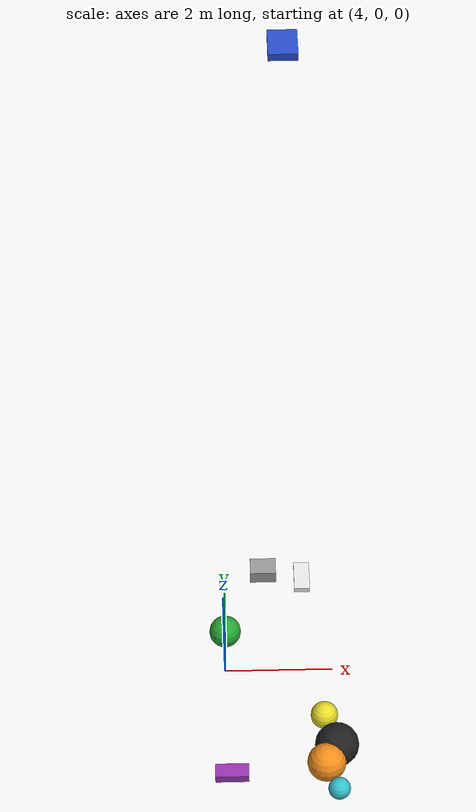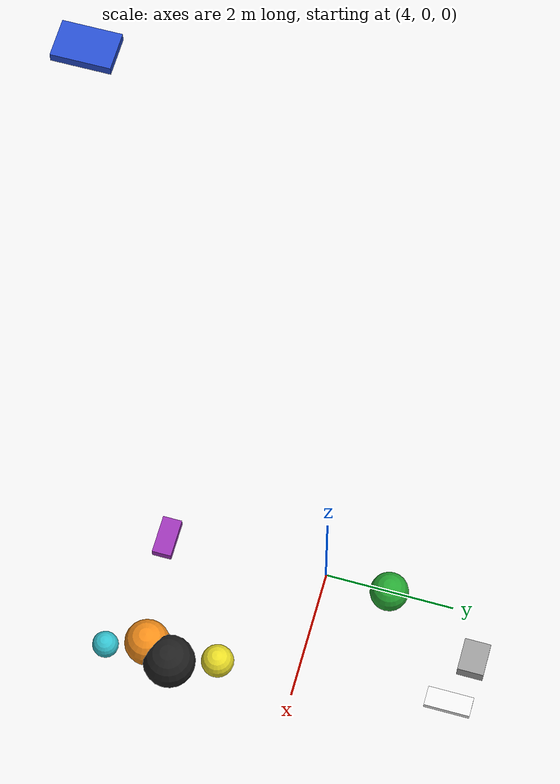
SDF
<sdf version="1.5">
 <world name="default">
  <include><uri>model://sun</uri></include>
  <spherical_coordinates>
   <surface_model>EARTH_WGS84</surface_model>
   <latitude_deg>47.333439</latitude_deg>
   <longitude_deg>8.547097</longitude_deg>
   <elevation>1.7</elevation>
  </spherical_coordinates>
  <physics name="default_physics" default="0" type="ode">
   <gravity>0 0 -9.8066</gravity>
   <ode>
    <solver>
     <type>quick</type>
     <iters>10</iters>
     <sor>1.3</sor>
     <use_dynamic_moi_rescaling>0</use_dynamic_moi_rescaling>
    </solver>
    <constraints>
     <cfm>0</cfm>
     <erp>0.2</erp>
     <contact_max_correcting_vel>100</contact_max_correcting_vel>
     <contact_surface_layer>0.001</contact_surface_layer>
    </constraints>
   </ode>
   <max_step_size>0.004</max_step_size>
   <real_time_factor>1</real_time_factor>
   <real_time_update_rate>250</real_time_update_rate>
   <magnetic_field>6.0e-6 2.3e-5 -4.2e-5</magnetic_field>
  </physics>
  <model name="trash_sphere_1">
   <pose>4 1 0 0 0 0</pose>
   <link name="link">
    <collision name="collision"><geometry><sphere><radius>0.3</radius></sphere></geometry></collision>
    <visual name="visual">
     <geometry><sphere><radius>0.3</radius></sphere></geometry>
     <material>
      <script><uri>file://media/materials/scripts/gazebo.material</uri><name>Gazebo/Green</name></script>
     </material>
    </visual>
    <inertial>
     <mass>0.0113</mass>
     <inertia><ixx>0.0001</ixx><ixy>0</ixy><ixz>0</ixz><iyy>0.0001</iyy><iyz>0</iyz><izz>0.0001</izz></inertia>
    </inertial>
   </link>
   <static>false</static>
   <plugin name="trash_buoyancy_trash_sphere_1" filename="libTrashBuoyancyPlugin.so">
    <bodyName>link</bodyName>
    <waterLevel>0</waterLevel>
    <waterDensity>997.8</waterDensity>
    <shape>sphere</shape>
    <radius>0.3</radius>
   </plugin>
  </model>
  <model name="trash_box_2">
   <pose>5.0 -2.30 15 0 0 0</pose>
   <link name="link">
    <collision name="collision"><geometry><box><size>0.4 0.6 0.1</size></box></geometry></collision>
    <visual name="visual">
     <geometry><box><size>0.4 0.6 0.1</size></box></geometry>
     <material>
      <script><uri>file://media/materials/scripts/gazebo.material</uri><name>Gazebo/Blue</name></script>
     </material>
    </visual>
    <inertial>
     <mass>0.0024</mass>
     <inertia><ixx>0.0001</ixx><ixy>0</ixy><ixz>0</ixz><iyy>0.0001</iyy><iyz>0</iyz><izz>0.0001</izz></inertia>
    </inertial>
   </link>
   <static>false</static>
   <plugin name="trash_buoyancy_trash_box_2" filename="libTrashBuoyancyPlugin.so">
    <bodyName>link</bodyName>
    <waterLevel>0</waterLevel>
    <waterDensity>997.8</waterDensity>
    <shape>box</shape>
    <size>0.4 0.6 0.1</size>
   </plugin>
  </model>
  <model name="trash_sphere_2">
   <pose>5.80 -1.2 0.1 0 0 0</pose>
   <link name="link">
    <collision name="collision"><geometry><sphere><radius>0.25</radius></sphere></geometry></collision>
    <visual name="visual">
     <geometry><sphere><radius>0.25</radius></sphere></geometry>
     <material>
      <script><uri>file://media/materials/scripts/gazebo.material</uri><name>Gazebo/Yellow</name></script>
     </material>
    </visual>
    <inertial>
     <mass>0.0065</mass>
     <inertia><ixx>0.0001</ixx><ixy>0</ixy><ixz>0</ixz><iyy>0.0001</iyy><iyz>0</iyz><izz>0.0001</izz></inertia>
    </inertial>
   </link>
   <static>false</static>
   <plugin name="trash_buoyancy_trash_sphere_2" filename="libTrashBuoyancyPlugin.so">
    <bodyName>link</bodyName>
    <waterLevel>0</waterLevel>
    <waterDensity>997.8</waterDensity>
    <shape>sphere</shape>
    <radius>0.25</radius>
   </plugin>
  </model>
  <model name="trash_box_3">
   <pose>4.1 -2.5 0.1 0 0 0</pose>
   <link name="link">
    <collision name="collision"><geometry><box><size>0.6 0.3 0.15</size></box></geometry></collision>
    <visual name="visual">
     <geometry><box><size>0.6 0.3 0.15</size></box></geometry>
     <material>
      <script><uri>file://media/materials/scripts/gazebo.material</uri><name>Gazebo/Purple</name></script>
     </material>
    </visual>
    <inertial>
     <mass>0.0027</mass>
     <inertia><ixx>0.0001</ixx><ixy>0</ixy><ixz>0</ixz><iyy>0.0001</iyy><iyz>0</iyz><izz>0.0001</izz></inertia>
    </inertial>
   </link>
   <static>false</static>
   <plugin name="trash_buoyancy_trash_box_3" filename="libTrashBuoyancyPlugin.so">
    <bodyName>link</bodyName>
    <waterLevel>0</waterLevel>
    <waterDensity>997.8</waterDensity>
    <shape>box</shape>
    <size>0.6 0.3 0.15</size>
   </plugin>
  </model>
  <model name="trash_sphere_3">
   <pose>5.8 -2.3 0.1 0 0 0</pose>
   <link name="link">
    <collision name="collision"><geometry><sphere><radius>0.35</radius></sphere></geometry></collision>
    <visual name="visual">
     <geometry><sphere><radius>0.35</radius></sphere></geometry>
     <material>
      <script><uri>file://media/materials/scripts/gazebo.material</uri><name>Gazebo/Orange</name></script>
     </material>
    </visual>
    <inertial>
     <mass>0.0179</mass>
     <inertia><ixx>0.0001</ixx><ixy>0</ixy><ixz>0</ixz><iyy>0.0001</iyy><iyz>0</iyz><izz>0.0001</izz></inertia>
    </inertial>
   </link>
   <static>false</static>
   <plugin name="trash_buoyancy_trash_sphere_3" filename="libTrashBuoyancyPlugin.so">
    <bodyName>link</bodyName>
    <waterLevel>0</waterLevel>
    <waterDensity>997.8</waterDensity>
    <shape>sphere</shape>
    <radius>0.35</radius>
   </plugin>
  </model>
  <model name="trash_box_4">
   <pose>5.5 2.3 0.1 0 0 0</pose>
   <link name="link">
    <collision name="collision"><geometry><box><size>0.3 0.7 0.1</size></box></geometry></collision>
    <visual name="visual">
     <geometry><box><size>0.3 0.7 0.1</size></box></geometry>
     <material>
      <script><uri>file://media/materials/scripts/gazebo.material</uri><name>Gazebo/White</name></script>
     </material>
    </visual>
    <inertial>
     <mass>0.0021</mass>
     <inertia><ixx>0.0001</ixx><ixy>0</ixy><ixz>0</ixz><iyy>0.0001</iyy><iyz>0</iyz><izz>0.0001</izz></inertia>
    </inertial>
   </link>
   <static>false</static>
   <plugin name="trash_buoyancy_trash_box_4" filename="libTrashBuoyancyPlugin.so">
    <bodyName>link</bodyName>
    <waterLevel>0</waterLevel>
    <waterDensity>997.8</waterDensity>
    <shape>box</shape>
    <size>0.3 0.7 0.1</size>
   </plugin>
  </model>
  <model name="trash_sphere_4">
   <pose>6 -2.9 0.1 0 0 0</pose>
   <link name="link">
    <collision name="collision"><geometry><sphere><radius>0.2</radius></sphere></geometry></collision>
    <visual name="visual">
     <geometry><sphere><radius>0.2</radius></sphere></geometry>
     <material>
      <script><uri>file://media/materials/scripts/gazebo.material</uri><name>Gazebo/Cyan</name></script>
     </material>
    </visual>
    <inertial>
     <mass>0.0033</mass>
     <inertia><ixx>0.0001</ixx><ixy>0</ixy><ixz>0</ixz><iyy>0.0001</iyy><iyz>0</iyz><izz>0.0001</izz></inertia>
    </inertial>
   </link>
   <static>false</static>
   <plugin name="trash_buoyancy_trash_sphere_4" filename="libTrashBuoyancyPlugin.so">
    <bodyName>link</bodyName>
    <waterLevel>0</waterLevel>
    <waterDensity>997.8</waterDensity>
    <shape>sphere</shape>
    <radius>0.2</radius>
   </plugin>
  </model>
  <model name="trash_box_5">
   <pose>4.75 2.5 0.1 0 0 0</pose>
   <link name="link">
    <collision name="collision"><geometry><box><size>0.5 0.4 0.25</size></box></geometry></collision>
    <visual name="visual">
     <geometry><box><size>0.5 0.4 0.25</size></box></geometry>
     <material>
      <script><uri>file://media/materials/scripts/gazebo.material</uri><name>Gazebo/Grey</name></script>
     </material>
    </visual>
    <inertial>
     <mass>0.005</mass>
     <inertia><ixx>0.0001</ixx><ixy>0</ixy><ixz>0</ixz><iyy>0.0001</iyy><iyz>0</iyz><izz>0.0001</izz></inertia>
    </inertial>
   </link>
   <static>false</static>
   <plugin name="trash_buoyancy" filename="libtrash_buoyancy_plugin.so">
    <water_density>997.8</water_density>
    <water_level>0.0</water_level>
    <buoyancy_factor>9.81</buoyancy_factor>
    <drag_coefficient>0.47</drag_coefficient>
    <debug_mode>false</debug_mode>
   </plugin>
  </model>
  <model name="trash_sphere_5">
   <pose>6.0 -1.9 0.1 0 0 0</pose>
   <link name="link">
    <collision name="collision"><geometry><sphere><radius>0.4</radius></sphere></geometry></collision>
    <visual name="visual">
     <geometry><sphere><radius>0.4</radius></sphere></geometry>
     <material>
      <script><uri>file://media/materials/scripts/gazebo.material</uri><name>Gazebo/Black</name></script>
     </material>
    </visual>
    <inertial>
     <mass>0.0268</mass>
     <inertia><ixx>0.0001</ixx><ixy>0</ixy><ixz>0</ixz><iyy>0.0001</iyy><iyz>0</iyz><izz>0.0001</izz></inertia>
    </inertial>
   </link>
   <static>false</static>
   <plugin name="trash_buoyancy_trash_sphere_5" filename="libTrashBuoyancyPlugin.so">
    <bodyName>link</bodyName>
    <waterLevel>0</waterLevel>
    <waterDensity>997.8</waterDensity>
    <shape>sphere</shape>
    <radius>0.4</radius>
   </plugin>
  </model>
 </world>
</sdf>
